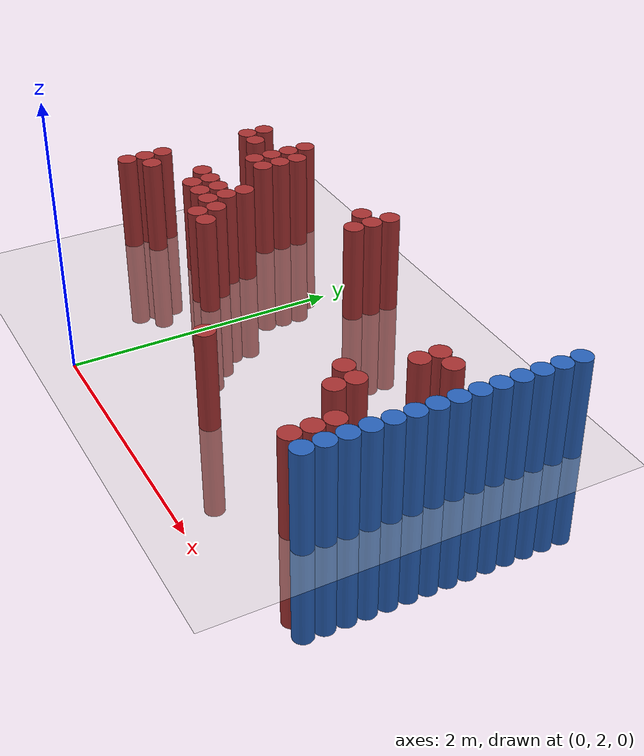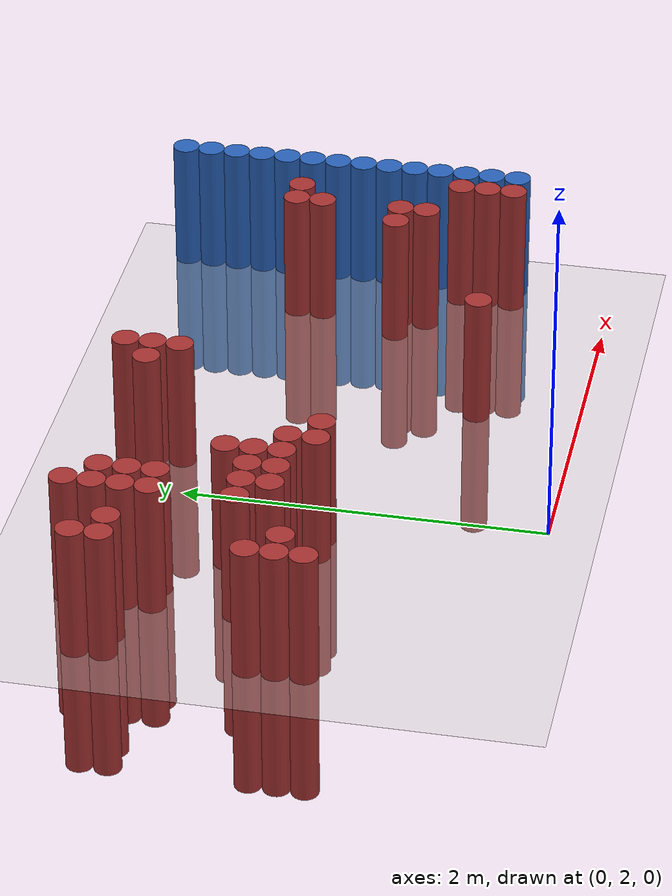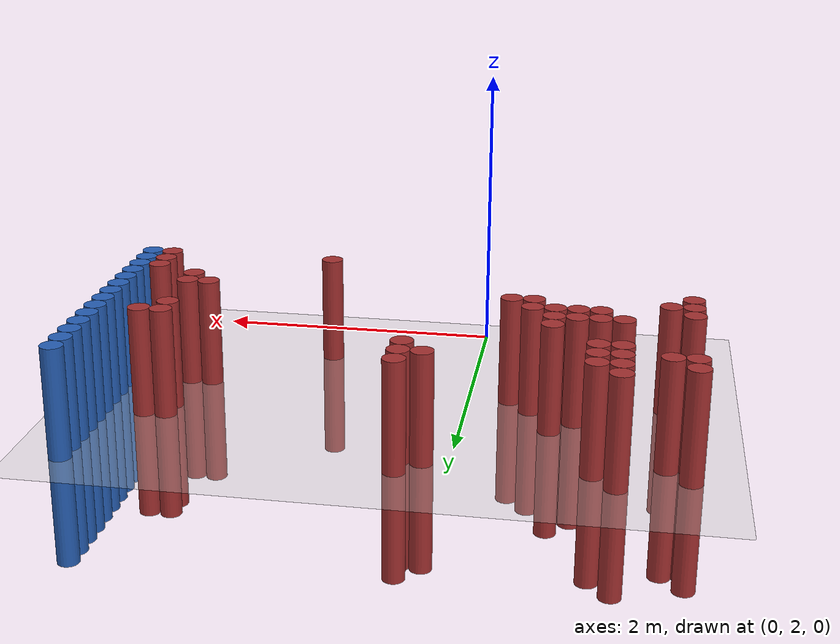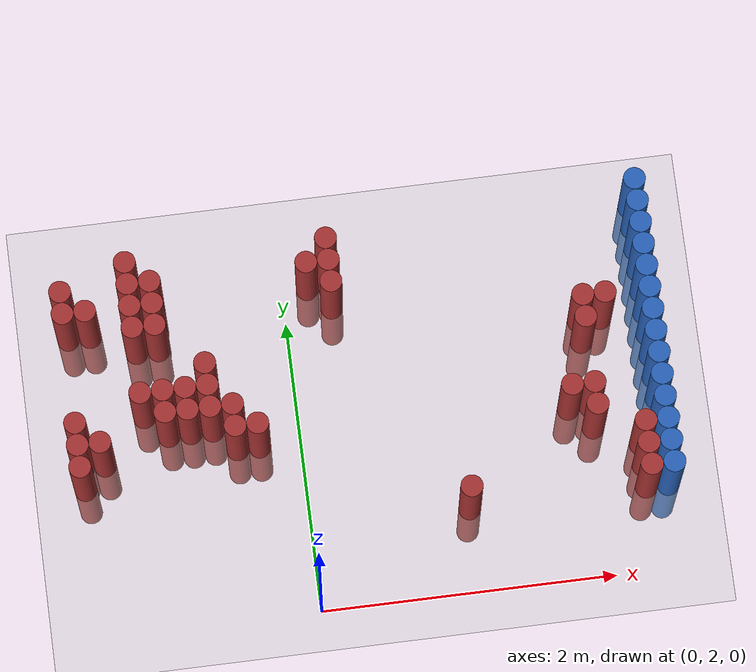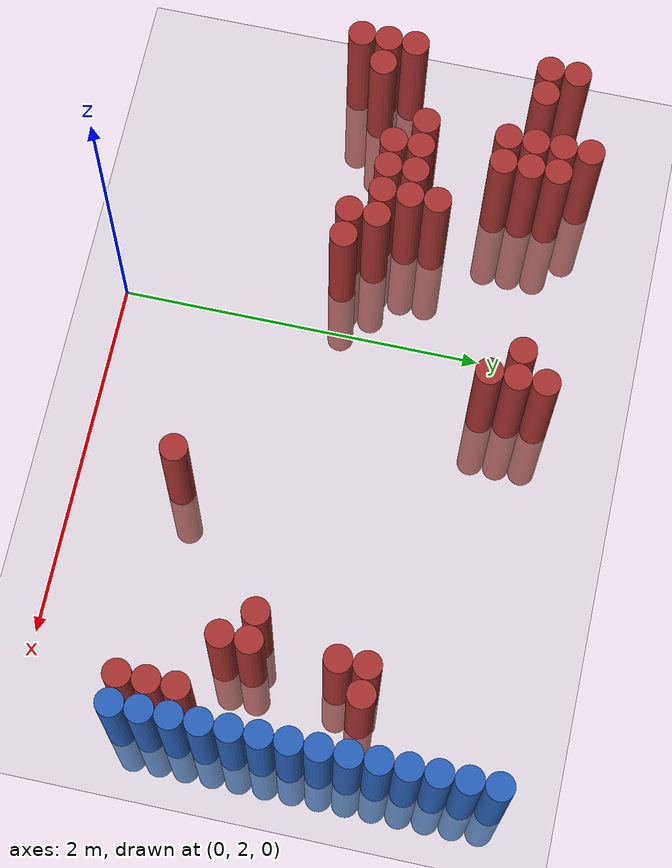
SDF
<sdf version="1.6">
 <world name="default">
  <model name="ground_plane">
   <static>1</static>
   <link name="link">
    <collision name="collision">
     <geometry><plane><normal>0 0 1</normal><size>100 100</size></plane></geometry>
     <surface><friction><ode><mu>100</mu><mu2>50</mu2></ode></friction></surface>
    </collision>
    <visual name="visual">
     <cast_shadows>0</cast_shadows>
     <geometry><plane><normal>0 0 1</normal><size>100 100</size></plane></geometry>
     <material>
      <script><uri>file://media/materials/scripts/gazebo.material</uri><name>Gazebo/Grey</name></script>
     </material>
    </visual>
   </link>
  </model>
  <model name="unit_cylinder_155">
   <static>1</static>
   <pose>-1.475000 3.025000 0.000000 0.000000 0.000000 0.000000</pose>
   <link name="link">
    <inertial>
     <mass>1</mass>
     <inertia><ixx>0.145833</ixx><ixy>0</ixy><ixz>0</ixz><iyy>0.145833</iyy><iyz>0</iyz><izz>0.125</izz></inertia>
    </inertial>
    <collision name="collision">
     <geometry><cylinder><radius>0.075000</radius><length>1.5</length></cylinder></geometry>
    </collision>
    <visual name="visual">
     <geometry><cylinder><radius>0.075000</radius><length>1.5</length></cylinder></geometry>
     <material>
      <ambient>0.648000 0.192000 0.192000 1</ambient>
      <diffuse>0.648000 0.192000 0.192000 1</diffuse>
     </material>
     <material>
      <script><name>Gazebo/Grey</name><uri>file://media/materials/scripts/gazebo.material</uri></script>
     </material>
    </visual>
   </link>
  </model>
  <model name="unit_cylinder_156">
   <static>1</static>
   <pose>-1.475000 3.175000 0.000000 0.000000 0.000000 0.000000</pose>
   <link name="link">
    <inertial>
     <mass>1</mass>
     <inertia><ixx>0.145833</ixx><ixy>0</ixy><ixz>0</ixz><iyy>0.145833</iyy><iyz>0</iyz><izz>0.125</izz></inertia>
    </inertial>
    <collision name="collision">
     <geometry><cylinder><radius>0.075000</radius><length>1.5</length></cylinder></geometry>
    </collision>
    <visual name="visual">
     <geometry><cylinder><radius>0.075000</radius><length>1.5</length></cylinder></geometry>
     <material>
      <ambient>0.648000 0.192000 0.192000 1</ambient>
      <diffuse>0.648000 0.192000 0.192000 1</diffuse>
     </material>
     <material>
      <script><name>Gazebo/Grey</name><uri>file://media/materials/scripts/gazebo.material</uri></script>
     </material>
    </visual>
   </link>
  </model>
  <model name="unit_cylinder_157">
   <static>1</static>
   <pose>-1.475000 3.325000 0.000000 0.000000 0.000000 0.000000</pose>
   <link name="link">
    <inertial>
     <mass>1</mass>
     <inertia><ixx>0.145833</ixx><ixy>0</ixy><ixz>0</ixz><iyy>0.145833</iyy><iyz>0</iyz><izz>0.125</izz></inertia>
    </inertial>
    <collision name="collision">
     <geometry><cylinder><radius>0.075000</radius><length>1.5</length></cylinder></geometry>
    </collision>
    <visual name="visual">
     <geometry><cylinder><radius>0.075000</radius><length>1.5</length></cylinder></geometry>
     <material>
      <ambient>0.648000 0.192000 0.192000 1</ambient>
      <diffuse>0.648000 0.192000 0.192000 1</diffuse>
     </material>
     <material>
      <script><name>Gazebo/Grey</name><uri>file://media/materials/scripts/gazebo.material</uri></script>
     </material>
    </visual>
   </link>
  </model>
  <model name="unit_cylinder_158">
   <static>1</static>
   <pose>-1.475000 4.075000 0.000000 0.000000 0.000000 0.000000</pose>
   <link name="link">
    <inertial>
     <mass>1</mass>
     <inertia><ixx>0.145833</ixx><ixy>0</ixy><ixz>0</ixz><iyy>0.145833</iyy><iyz>0</iyz><izz>0.125</izz></inertia>
    </inertial>
    <collision name="collision">
     <geometry><cylinder><radius>0.075000</radius><length>1.5</length></cylinder></geometry>
    </collision>
    <visual name="visual">
     <geometry><cylinder><radius>0.075000</radius><length>1.5</length></cylinder></geometry>
     <material>
      <ambient>0.648000 0.192000 0.192000 1</ambient>
      <diffuse>0.648000 0.192000 0.192000 1</diffuse>
     </material>
     <material>
      <script><name>Gazebo/Grey</name><uri>file://media/materials/scripts/gazebo.material</uri></script>
     </material>
    </visual>
   </link>
  </model>
  <model name="unit_cylinder_159">
   <static>1</static>
   <pose>-1.475000 4.225000 0.000000 0.000000 0.000000 0.000000</pose>
   <link name="link">
    <inertial>
     <mass>1</mass>
     <inertia><ixx>0.145833</ixx><ixy>0</ixy><ixz>0</ixz><iyy>0.145833</iyy><iyz>0</iyz><izz>0.125</izz></inertia>
    </inertial>
    <collision name="collision">
     <geometry><cylinder><radius>0.075000</radius><length>1.5</length></cylinder></geometry>
    </collision>
    <visual name="visual">
     <geometry><cylinder><radius>0.075000</radius><length>1.5</length></cylinder></geometry>
     <material>
      <ambient>0.648000 0.192000 0.192000 1</ambient>
      <diffuse>0.648000 0.192000 0.192000 1</diffuse>
     </material>
     <material>
      <script><name>Gazebo/Grey</name><uri>file://media/materials/scripts/gazebo.material</uri></script>
     </material>
    </visual>
   </link>
  </model>
  <model name="unit_cylinder_168">
   <static>1</static>
   <pose>-1.325000 3.175000 0.000000 0.000000 0.000000 0.000000</pose>
   <link name="link">
    <inertial>
     <mass>1</mass>
     <inertia><ixx>0.145833</ixx><ixy>0</ixy><ixz>0</ixz><iyy>0.145833</iyy><iyz>0</iyz><izz>0.125</izz></inertia>
    </inertial>
    <collision name="collision">
     <geometry><cylinder><radius>0.075000</radius><length>1.5</length></cylinder></geometry>
    </collision>
    <visual name="visual">
     <geometry><cylinder><radius>0.075000</radius><length>1.5</length></cylinder></geometry>
     <material>
      <ambient>0.648000 0.192000 0.192000 1</ambient>
      <diffuse>0.648000 0.192000 0.192000 1</diffuse>
     </material>
     <material>
      <script><name>Gazebo/Grey</name><uri>file://media/materials/scripts/gazebo.material</uri></script>
     </material>
    </visual>
   </link>
  </model>
  <model name="unit_cylinder_169">
   <static>1</static>
   <pose>-1.325000 4.075000 0.000000 0.000000 0.000000 0.000000</pose>
   <link name="link">
    <inertial>
     <mass>1</mass>
     <inertia><ixx>0.145833</ixx><ixy>0</ixy><ixz>0</ixz><iyy>0.145833</iyy><iyz>0</iyz><izz>0.125</izz></inertia>
    </inertial>
    <collision name="collision">
     <geometry><cylinder><radius>0.075000</radius><length>1.5</length></cylinder></geometry>
    </collision>
    <visual name="visual">
     <geometry><cylinder><radius>0.075000</radius><length>1.5</length></cylinder></geometry>
     <material>
      <ambient>0.648000 0.192000 0.192000 1</ambient>
      <diffuse>0.648000 0.192000 0.192000 1</diffuse>
     </material>
     <material>
      <script><name>Gazebo/Grey</name><uri>file://media/materials/scripts/gazebo.material</uri></script>
     </material>
    </visual>
   </link>
  </model>
  <model name="unit_cylinder_177">
   <static>1</static>
   <pose>-1.025000 3.475000 0.000000 0.000000 0.000000 0.000000</pose>
   <link name="link">
    <inertial>
     <mass>1</mass>
     <inertia><ixx>0.145833</ixx><ixy>0</ixy><ixz>0</ixz><iyy>0.145833</iyy><iyz>0</iyz><izz>0.125</izz></inertia>
    </inertial>
    <collision name="collision">
     <geometry><cylinder><radius>0.075000</radius><length>1.5</length></cylinder></geometry>
    </collision>
    <visual name="visual">
     <geometry><cylinder><radius>0.075000</radius><length>1.5</length></cylinder></geometry>
     <material>
      <ambient>0.648000 0.192000 0.192000 1</ambient>
      <diffuse>0.648000 0.192000 0.192000 1</diffuse>
     </material>
     <material>
      <script><name>Gazebo/Grey</name><uri>file://media/materials/scripts/gazebo.material</uri></script>
     </material>
    </visual>
   </link>
  </model>
  <model name="unit_cylinder_178">
   <static>1</static>
   <pose>-1.025000 3.925000 0.000000 0.000000 0.000000 0.000000</pose>
   <link name="link">
    <inertial>
     <mass>1</mass>
     <inertia><ixx>0.145833</ixx><ixy>0</ixy><ixz>0</ixz><iyy>0.145833</iyy><iyz>0</iyz><izz>0.125</izz></inertia>
    </inertial>
    <collision name="collision">
     <geometry><cylinder><radius>0.075000</radius><length>1.5</length></cylinder></geometry>
    </collision>
    <visual name="visual">
     <geometry><cylinder><radius>0.075000</radius><length>1.5</length></cylinder></geometry>
     <material>
      <ambient>0.648000 0.192000 0.192000 1</ambient>
      <diffuse>0.648000 0.192000 0.192000 1</diffuse>
     </material>
     <material>
      <script><name>Gazebo/Grey</name><uri>file://media/materials/scripts/gazebo.material</uri></script>
     </material>
    </visual>
   </link>
  </model>
  <model name="unit_cylinder_179">
   <static>1</static>
   <pose>-1.025000 4.075000 0.000000 0.000000 0.000000 0.000000</pose>
   <link name="link">
    <inertial>
     <mass>1</mass>
     <inertia><ixx>0.145833</ixx><ixy>0</ixy><ixz>0</ixz><iyy>0.145833</iyy><iyz>0</iyz><izz>0.125</izz></inertia>
    </inertial>
    <collision name="collision">
     <geometry><cylinder><radius>0.075000</radius><length>1.5</length></cylinder></geometry>
    </collision>
    <visual name="visual">
     <geometry><cylinder><radius>0.075000</radius><length>1.5</length></cylinder></geometry>
     <material>
      <ambient>0.648000 0.192000 0.192000 1</ambient>
      <diffuse>0.648000 0.192000 0.192000 1</diffuse>
     </material>
     <material>
      <script><name>Gazebo/Grey</name><uri>file://media/materials/scripts/gazebo.material</uri></script>
     </material>
    </visual>
   </link>
  </model>
  <model name="unit_cylinder_180">
   <static>1</static>
   <pose>-1.025000 4.225000 0.000000 0.000000 0.000000 0.000000</pose>
   <link name="link">
    <inertial>
     <mass>1</mass>
     <inertia><ixx>0.145833</ixx><ixy>0</ixy><ixz>0</ixz><iyy>0.145833</iyy><iyz>0</iyz><izz>0.125</izz></inertia>
    </inertial>
    <collision name="collision">
     <geometry><cylinder><radius>0.075000</radius><length>1.5</length></cylinder></geometry>
    </collision>
    <visual name="visual">
     <geometry><cylinder><radius>0.075000</radius><length>1.5</length></cylinder></geometry>
     <material>
      <ambient>0.648000 0.192000 0.192000 1</ambient>
      <diffuse>0.648000 0.192000 0.192000 1</diffuse>
     </material>
     <material>
      <script><name>Gazebo/Grey</name><uri>file://media/materials/scripts/gazebo.material</uri></script>
     </material>
    </visual>
   </link>
  </model>
  <model name="unit_cylinder_181">
   <static>1</static>
   <pose>-1.025000 4.375000 0.000000 0.000000 0.000000 0.000000</pose>
   <link name="link">
    <inertial>
     <mass>1</mass>
     <inertia><ixx>0.145833</ixx><ixy>0</ixy><ixz>0</ixz><iyy>0.145833</iyy><iyz>0</iyz><izz>0.125</izz></inertia>
    </inertial>
    <collision name="collision">
     <geometry><cylinder><radius>0.075000</radius><length>1.5</length></cylinder></geometry>
    </collision>
    <visual name="visual">
     <geometry><cylinder><radius>0.075000</radius><length>1.5</length></cylinder></geometry>
     <material>
      <ambient>0.648000 0.192000 0.192000 1</ambient>
      <diffuse>0.648000 0.192000 0.192000 1</diffuse>
     </material>
     <material>
      <script><name>Gazebo/Grey</name><uri>file://media/materials/scripts/gazebo.material</uri></script>
     </material>
    </visual>
   </link>
  </model>
  <model name="unit_cylinder_185">
   <static>1</static>
   <pose>-0.875000 3.325000 0.000000 0.000000 0.000000 0.000000</pose>
   <link name="link">
    <inertial>
     <mass>1</mass>
     <inertia><ixx>0.145833</ixx><ixy>0</ixy><ixz>0</ixz><iyy>0.145833</iyy><iyz>0</iyz><izz>0.125</izz></inertia>
    </inertial>
    <collision name="collision">
     <geometry><cylinder><radius>0.075000</radius><length>1.5</length></cylinder></geometry>
    </collision>
    <visual name="visual">
     <geometry><cylinder><radius>0.075000</radius><length>1.5</length></cylinder></geometry>
     <material>
      <ambient>0.648000 0.192000 0.192000 1</ambient>
      <diffuse>0.648000 0.192000 0.192000 1</diffuse>
     </material>
     <material>
      <script><name>Gazebo/Grey</name><uri>file://media/materials/scripts/gazebo.material</uri></script>
     </material>
    </visual>
   </link>
  </model>
  <model name="unit_cylinder_186">
   <static>1</static>
   <pose>-0.875000 3.475000 0.000000 0.000000 0.000000 0.000000</pose>
   <link name="link">
    <inertial>
     <mass>1</mass>
     <inertia><ixx>0.145833</ixx><ixy>0</ixy><ixz>0</ixz><iyy>0.145833</iyy><iyz>0</iyz><izz>0.125</izz></inertia>
    </inertial>
    <collision name="collision">
     <geometry><cylinder><radius>0.075000</radius><length>1.5</length></cylinder></geometry>
    </collision>
    <visual name="visual">
     <geometry><cylinder><radius>0.075000</radius><length>1.5</length></cylinder></geometry>
     <material>
      <ambient>0.648000 0.192000 0.192000 1</ambient>
      <diffuse>0.648000 0.192000 0.192000 1</diffuse>
     </material>
     <material>
      <script><name>Gazebo/Grey</name><uri>file://media/materials/scripts/gazebo.material</uri></script>
     </material>
    </visual>
   </link>
  </model>
  <model name="unit_cylinder_187">
   <static>1</static>
   <pose>-0.875000 3.925000 0.000000 0.000000 0.000000 0.000000</pose>
   <link name="link">
    <inertial>
     <mass>1</mass>
     <inertia><ixx>0.145833</ixx><ixy>0</ixy><ixz>0</ixz><iyy>0.145833</iyy><iyz>0</iyz><izz>0.125</izz></inertia>
    </inertial>
    <collision name="collision">
     <geometry><cylinder><radius>0.075000</radius><length>1.5</length></cylinder></geometry>
    </collision>
    <visual name="visual">
     <geometry><cylinder><radius>0.075000</radius><length>1.5</length></cylinder></geometry>
     <material>
      <ambient>0.648000 0.192000 0.192000 1</ambient>
      <diffuse>0.648000 0.192000 0.192000 1</diffuse>
     </material>
     <material>
      <script><name>Gazebo/Grey</name><uri>file://media/materials/scripts/gazebo.material</uri></script>
     </material>
    </visual>
   </link>
  </model>
  <model name="unit_cylinder_188">
   <static>1</static>
   <pose>-0.875000 4.075000 0.000000 0.000000 0.000000 0.000000</pose>
   <link name="link">
    <inertial>
     <mass>1</mass>
     <inertia><ixx>0.145833</ixx><ixy>0</ixy><ixz>0</ixz><iyy>0.145833</iyy><iyz>0</iyz><izz>0.125</izz></inertia>
    </inertial>
    <collision name="collision">
     <geometry><cylinder><radius>0.075000</radius><length>1.5</length></cylinder></geometry>
    </collision>
    <visual name="visual">
     <geometry><cylinder><radius>0.075000</radius><length>1.5</length></cylinder></geometry>
     <material>
      <ambient>0.648000 0.192000 0.192000 1</ambient>
      <diffuse>0.648000 0.192000 0.192000 1</diffuse>
     </material>
     <material>
      <script><name>Gazebo/Grey</name><uri>file://media/materials/scripts/gazebo.material</uri></script>
     </material>
    </visual>
   </link>
  </model>
  <model name="unit_cylinder_189">
   <static>1</static>
   <pose>-0.875000 4.225000 0.000000 0.000000 0.000000 0.000000</pose>
   <link name="link">
    <inertial>
     <mass>1</mass>
     <inertia><ixx>0.145833</ixx><ixy>0</ixy><ixz>0</ixz><iyy>0.145833</iyy><iyz>0</iyz><izz>0.125</izz></inertia>
    </inertial>
    <collision name="collision">
     <geometry><cylinder><radius>0.075000</radius><length>1.5</length></cylinder></geometry>
    </collision>
    <visual name="visual">
     <geometry><cylinder><radius>0.075000</radius><length>1.5</length></cylinder></geometry>
     <material>
      <ambient>0.648000 0.192000 0.192000 1</ambient>
      <diffuse>0.648000 0.192000 0.192000 1</diffuse>
     </material>
     <material>
      <script><name>Gazebo/Grey</name><uri>file://media/materials/scripts/gazebo.material</uri></script>
     </material>
    </visual>
   </link>
  </model>
  <model name="unit_cylinder_194">
   <static>1</static>
   <pose>-0.725000 3.325000 0.000000 0.000000 0.000000 0.000000</pose>
   <link name="link">
    <inertial>
     <mass>1</mass>
     <inertia><ixx>0.145833</ixx><ixy>0</ixy><ixz>0</ixz><iyy>0.145833</iyy><iyz>0</iyz><izz>0.125</izz></inertia>
    </inertial>
    <collision name="collision">
     <geometry><cylinder><radius>0.075000</radius><length>1.5</length></cylinder></geometry>
    </collision>
    <visual name="visual">
     <geometry><cylinder><radius>0.075000</radius><length>1.5</length></cylinder></geometry>
     <material>
      <ambient>0.648000 0.192000 0.192000 1</ambient>
      <diffuse>0.648000 0.192000 0.192000 1</diffuse>
     </material>
     <material>
      <script><name>Gazebo/Grey</name><uri>file://media/materials/scripts/gazebo.material</uri></script>
     </material>
    </visual>
   </link>
  </model>
  <model name="unit_cylinder_195">
   <static>1</static>
   <pose>-0.725000 3.475000 0.000000 0.000000 0.000000 0.000000</pose>
   <link name="link">
    <inertial>
     <mass>1</mass>
     <inertia><ixx>0.145833</ixx><ixy>0</ixy><ixz>0</ixz><iyy>0.145833</iyy><iyz>0</iyz><izz>0.125</izz></inertia>
    </inertial>
    <collision name="collision">
     <geometry><cylinder><radius>0.075000</radius><length>1.5</length></cylinder></geometry>
    </collision>
    <visual name="visual">
     <geometry><cylinder><radius>0.075000</radius><length>1.5</length></cylinder></geometry>
     <material>
      <ambient>0.648000 0.192000 0.192000 1</ambient>
      <diffuse>0.648000 0.192000 0.192000 1</diffuse>
     </material>
     <material>
      <script><name>Gazebo/Grey</name><uri>file://media/materials/scripts/gazebo.material</uri></script>
     </material>
    </visual>
   </link>
  </model>
  <model name="unit_cylinder_198">
   <static>1</static>
   <pose>-0.575000 3.325000 0.000000 0.000000 0.000000 0.000000</pose>
   <link name="link">
    <inertial>
     <mass>1</mass>
     <inertia><ixx>0.145833</ixx><ixy>0</ixy><ixz>0</ixz><iyy>0.145833</iyy><iyz>0</iyz><izz>0.125</izz></inertia>
    </inertial>
    <collision name="collision">
     <geometry><cylinder><radius>0.075000</radius><length>1.5</length></cylinder></geometry>
    </collision>
    <visual name="visual">
     <geometry><cylinder><radius>0.075000</radius><length>1.5</length></cylinder></geometry>
     <material>
      <ambient>0.648000 0.192000 0.192000 1</ambient>
      <diffuse>0.648000 0.192000 0.192000 1</diffuse>
     </material>
     <material>
      <script><name>Gazebo/Grey</name><uri>file://media/materials/scripts/gazebo.material</uri></script>
     </material>
    </visual>
   </link>
  </model>
  <model name="unit_cylinder_199">
   <static>1</static>
   <pose>-0.575000 3.475000 0.000000 0.000000 0.000000 0.000000</pose>
   <link name="link">
    <inertial>
     <mass>1</mass>
     <inertia><ixx>0.145833</ixx><ixy>0</ixy><ixz>0</ixz><iyy>0.145833</iyy><iyz>0</iyz><izz>0.125</izz></inertia>
    </inertial>
    <collision name="collision">
     <geometry><cylinder><radius>0.075000</radius><length>1.5</length></cylinder></geometry>
    </collision>
    <visual name="visual">
     <geometry><cylinder><radius>0.075000</radius><length>1.5</length></cylinder></geometry>
     <material>
      <ambient>0.648000 0.192000 0.192000 1</ambient>
      <diffuse>0.648000 0.192000 0.192000 1</diffuse>
     </material>
     <material>
      <script><name>Gazebo/Grey</name><uri>file://media/materials/scripts/gazebo.material</uri></script>
     </material>
    </visual>
   </link>
  </model>
  <model name="unit_cylinder_200">
   <static>1</static>
   <pose>-0.575000 3.625000 0.000000 0.000000 0.000000 0.000000</pose>
   <link name="link">
    <inertial>
     <mass>1</mass>
     <inertia><ixx>0.145833</ixx><ixy>0</ixy><ixz>0</ixz><iyy>0.145833</iyy><iyz>0</iyz><izz>0.125</izz></inertia>
    </inertial>
    <collision name="collision">
     <geometry><cylinder><radius>0.075000</radius><length>1.5</length></cylinder></geometry>
    </collision>
    <visual name="visual">
     <geometry><cylinder><radius>0.075000</radius><length>1.5</length></cylinder></geometry>
     <material>
      <ambient>0.648000 0.192000 0.192000 1</ambient>
      <diffuse>0.648000 0.192000 0.192000 1</diffuse>
     </material>
     <material>
      <script><name>Gazebo/Grey</name><uri>file://media/materials/scripts/gazebo.material</uri></script>
     </material>
    </visual>
   </link>
  </model>
  <model name="unit_cylinder_201">
   <static>1</static>
   <pose>-0.425000 3.175000 0.000000 0.000000 0.000000 0.000000</pose>
   <link name="link">
    <inertial>
     <mass>1</mass>
     <inertia><ixx>0.145833</ixx><ixy>0</ixy><ixz>0</ixz><iyy>0.145833</iyy><iyz>0</iyz><izz>0.125</izz></inertia>
    </inertial>
    <collision name="collision">
     <geometry><cylinder><radius>0.075000</radius><length>1.5</length></cylinder></geometry>
    </collision>
    <visual name="visual">
     <geometry><cylinder><radius>0.075000</radius><length>1.5</length></cylinder></geometry>
     <material>
      <ambient>0.648000 0.192000 0.192000 1</ambient>
      <diffuse>0.648000 0.192000 0.192000 1</diffuse>
     </material>
     <material>
      <script><name>Gazebo/Grey</name><uri>file://media/materials/scripts/gazebo.material</uri></script>
     </material>
    </visual>
   </link>
  </model>
  <model name="unit_cylinder_202">
   <static>1</static>
   <pose>-0.425000 3.325000 0.000000 0.000000 0.000000 0.000000</pose>
   <link name="link">
    <inertial>
     <mass>1</mass>
     <inertia><ixx>0.145833</ixx><ixy>0</ixy><ixz>0</ixz><iyy>0.145833</iyy><iyz>0</iyz><izz>0.125</izz></inertia>
    </inertial>
    <collision name="collision">
     <geometry><cylinder><radius>0.075000</radius><length>1.5</length></cylinder></geometry>
    </collision>
    <visual name="visual">
     <geometry><cylinder><radius>0.075000</radius><length>1.5</length></cylinder></geometry>
     <material>
      <ambient>0.648000 0.192000 0.192000 1</ambient>
      <diffuse>0.648000 0.192000 0.192000 1</diffuse>
     </material>
     <material>
      <script><name>Gazebo/Grey</name><uri>file://media/materials/scripts/gazebo.material</uri></script>
     </material>
    </visual>
   </link>
  </model>
  <model name="unit_cylinder_203">
   <static>1</static>
   <pose>-0.275000 3.175000 0.000000 0.000000 0.000000 0.000000</pose>
   <link name="link">
    <inertial>
     <mass>1</mass>
     <inertia><ixx>0.145833</ixx><ixy>0</ixy><ixz>0</ixz><iyy>0.145833</iyy><iyz>0</iyz><izz>0.125</izz></inertia>
    </inertial>
    <collision name="collision">
     <geometry><cylinder><radius>0.075000</radius><length>1.5</length></cylinder></geometry>
    </collision>
    <visual name="visual">
     <geometry><cylinder><radius>0.075000</radius><length>1.5</length></cylinder></geometry>
     <material>
      <ambient>0.648000 0.192000 0.192000 1</ambient>
      <diffuse>0.648000 0.192000 0.192000 1</diffuse>
     </material>
     <material>
      <script><name>Gazebo/Grey</name><uri>file://media/materials/scripts/gazebo.material</uri></script>
     </material>
    </visual>
   </link>
  </model>
  <model name="unit_cylinder_206">
   <static>1</static>
   <pose>0.175000 4.225000 0.000000 0.000000 0.000000 0.000000</pose>
   <link name="link">
    <inertial>
     <mass>1</mass>
     <inertia><ixx>0.145833</ixx><ixy>0</ixy><ixz>0</ixz><iyy>0.145833</iyy><iyz>0</iyz><izz>0.125</izz></inertia>
    </inertial>
    <collision name="collision">
     <geometry><cylinder><radius>0.075000</radius><length>1.5</length></cylinder></geometry>
    </collision>
    <visual name="visual">
     <geometry><cylinder><radius>0.075000</radius><length>1.5</length></cylinder></geometry>
     <material>
      <ambient>0.648000 0.192000 0.192000 1</ambient>
      <diffuse>0.648000 0.192000 0.192000 1</diffuse>
     </material>
     <material>
      <script><name>Gazebo/Grey</name><uri>file://media/materials/scripts/gazebo.material</uri></script>
     </material>
    </visual>
   </link>
  </model>
  <model name="unit_cylinder_208">
   <static>1</static>
   <pose>0.325000 4.075000 0.000000 0.000000 0.000000 0.000000</pose>
   <link name="link">
    <inertial>
     <mass>1</mass>
     <inertia><ixx>0.145833</ixx><ixy>0</ixy><ixz>0</ixz><iyy>0.145833</iyy><iyz>0</iyz><izz>0.125</izz></inertia>
    </inertial>
    <collision name="collision">
     <geometry><cylinder><radius>0.075000</radius><length>1.5</length></cylinder></geometry>
    </collision>
    <visual name="visual">
     <geometry><cylinder><radius>0.075000</radius><length>1.5</length></cylinder></geometry>
     <material>
      <ambient>0.648000 0.192000 0.192000 1</ambient>
      <diffuse>0.648000 0.192000 0.192000 1</diffuse>
     </material>
     <material>
      <script><name>Gazebo/Grey</name><uri>file://media/materials/scripts/gazebo.material</uri></script>
     </material>
    </visual>
   </link>
  </model>
  <model name="unit_cylinder_209">
   <static>1</static>
   <pose>0.325000 4.225000 0.000000 0.000000 0.000000 0.000000</pose>
   <link name="link">
    <inertial>
     <mass>1</mass>
     <inertia><ixx>0.145833</ixx><ixy>0</ixy><ixz>0</ixz><iyy>0.145833</iyy><iyz>0</iyz><izz>0.125</izz></inertia>
    </inertial>
    <collision name="collision">
     <geometry><cylinder><radius>0.075000</radius><length>1.5</length></cylinder></geometry>
    </collision>
    <visual name="visual">
     <geometry><cylinder><radius>0.075000</radius><length>1.5</length></cylinder></geometry>
     <material>
      <ambient>0.648000 0.192000 0.192000 1</ambient>
      <diffuse>0.648000 0.192000 0.192000 1</diffuse>
     </material>
     <material>
      <script><name>Gazebo/Grey</name><uri>file://media/materials/scripts/gazebo.material</uri></script>
     </material>
    </visual>
   </link>
  </model>
  <model name="unit_cylinder_210">
   <static>1</static>
   <pose>0.325000 4.375000 0.000000 0.000000 0.000000 0.000000</pose>
   <link name="link">
    <inertial>
     <mass>1</mass>
     <inertia><ixx>0.145833</ixx><ixy>0</ixy><ixz>0</ixz><iyy>0.145833</iyy><iyz>0</iyz><izz>0.125</izz></inertia>
    </inertial>
    <collision name="collision">
     <geometry><cylinder><radius>0.075000</radius><length>1.5</length></cylinder></geometry>
    </collision>
    <visual name="visual">
     <geometry><cylinder><radius>0.075000</radius><length>1.5</length></cylinder></geometry>
     <material>
      <ambient>0.648000 0.192000 0.192000 1</ambient>
      <diffuse>0.648000 0.192000 0.192000 1</diffuse>
     </material>
     <material>
      <script><name>Gazebo/Grey</name><uri>file://media/materials/scripts/gazebo.material</uri></script>
     </material>
    </visual>
   </link>
  </model>
  <model name="unit_cylinder_215">
   <static>1</static>
   <pose>1.075000 2.575000 0.000000 0.000000 0.000000 0.000000</pose>
   <link name="link">
    <inertial>
     <mass>1</mass>
     <inertia><ixx>0.145833</ixx><ixy>0</ixy><ixz>0</ixz><iyy>0.145833</iyy><iyz>0</iyz><izz>0.125</izz></inertia>
    </inertial>
    <collision name="collision">
     <geometry><cylinder><radius>0.075000</radius><length>1.5</length></cylinder></geometry>
    </collision>
    <visual name="visual">
     <geometry><cylinder><radius>0.075000</radius><length>1.5</length></cylinder></geometry>
     <material>
      <ambient>0.648000 0.192000 0.192000 1</ambient>
      <diffuse>0.648000 0.192000 0.192000 1</diffuse>
     </material>
     <material>
      <script><name>Gazebo/Grey</name><uri>file://media/materials/scripts/gazebo.material</uri></script>
     </material>
    </visual>
   </link>
  </model>
  <model name="unit_cylinder_221">
   <static>1</static>
   <pose>1.825000 3.175000 0.000000 0.000000 0.000000 0.000000</pose>
   <link name="link">
    <inertial>
     <mass>1</mass>
     <inertia><ixx>0.145833</ixx><ixy>0</ixy><ixz>0</ixz><iyy>0.145833</iyy><iyz>0</iyz><izz>0.125</izz></inertia>
    </inertial>
    <collision name="collision">
     <geometry><cylinder><radius>0.075000</radius><length>1.5</length></cylinder></geometry>
    </collision>
    <visual name="visual">
     <geometry><cylinder><radius>0.075000</radius><length>1.5</length></cylinder></geometry>
     <material>
      <ambient>0.648000 0.192000 0.192000 1</ambient>
      <diffuse>0.648000 0.192000 0.192000 1</diffuse>
     </material>
     <material>
      <script><name>Gazebo/Grey</name><uri>file://media/materials/scripts/gazebo.material</uri></script>
     </material>
    </visual>
   </link>
  </model>
  <model name="unit_cylinder_223">
   <static>1</static>
   <pose>1.975000 3.025000 0.000000 0.000000 0.000000 0.000000</pose>
   <link name="link">
    <inertial>
     <mass>1</mass>
     <inertia><ixx>0.145833</ixx><ixy>0</ixy><ixz>0</ixz><iyy>0.145833</iyy><iyz>0</iyz><izz>0.125</izz></inertia>
    </inertial>
    <collision name="collision">
     <geometry><cylinder><radius>0.075000</radius><length>1.5</length></cylinder></geometry>
    </collision>
    <visual name="visual">
     <geometry><cylinder><radius>0.075000</radius><length>1.5</length></cylinder></geometry>
     <material>
      <ambient>0.648000 0.192000 0.192000 1</ambient>
      <diffuse>0.648000 0.192000 0.192000 1</diffuse>
     </material>
     <material>
      <script><name>Gazebo/Grey</name><uri>file://media/materials/scripts/gazebo.material</uri></script>
     </material>
    </visual>
   </link>
  </model>
  <model name="unit_cylinder_224">
   <static>1</static>
   <pose>1.975000 3.175000 0.000000 0.000000 0.000000 0.000000</pose>
   <link name="link">
    <inertial>
     <mass>1</mass>
     <inertia><ixx>0.145833</ixx><ixy>0</ixy><ixz>0</ixz><iyy>0.145833</iyy><iyz>0</iyz><izz>0.125</izz></inertia>
    </inertial>
    <collision name="collision">
     <geometry><cylinder><radius>0.075000</radius><length>1.5</length></cylinder></geometry>
    </collision>
    <visual name="visual">
     <geometry><cylinder><radius>0.075000</radius><length>1.5</length></cylinder></geometry>
     <material>
      <ambient>0.648000 0.192000 0.192000 1</ambient>
      <diffuse>0.648000 0.192000 0.192000 1</diffuse>
     </material>
     <material>
      <script><name>Gazebo/Grey</name><uri>file://media/materials/scripts/gazebo.material</uri></script>
     </material>
    </visual>
   </link>
  </model>
  <model name="unit_cylinder_225">
   <static>1</static>
   <pose>1.975000 3.625000 0.000000 0.000000 0.000000 0.000000</pose>
   <link name="link">
    <inertial>
     <mass>1</mass>
     <inertia><ixx>0.145833</ixx><ixy>0</ixy><ixz>0</ixz><iyy>0.145833</iyy><iyz>0</iyz><izz>0.125</izz></inertia>
    </inertial>
    <collision name="collision">
     <geometry><cylinder><radius>0.075000</radius><length>1.5</length></cylinder></geometry>
    </collision>
    <visual name="visual">
     <geometry><cylinder><radius>0.075000</radius><length>1.5</length></cylinder></geometry>
     <material>
      <ambient>0.648000 0.192000 0.192000 1</ambient>
      <diffuse>0.648000 0.192000 0.192000 1</diffuse>
     </material>
     <material>
      <script><name>Gazebo/Grey</name><uri>file://media/materials/scripts/gazebo.material</uri></script>
     </material>
    </visual>
   </link>
  </model>
  <model name="unit_cylinder_226">
   <static>1</static>
   <pose>1.975000 3.775000 0.000000 0.000000 0.000000 0.000000</pose>
   <link name="link">
    <inertial>
     <mass>1</mass>
     <inertia><ixx>0.145833</ixx><ixy>0</ixy><ixz>0</ixz><iyy>0.145833</iyy><iyz>0</iyz><izz>0.125</izz></inertia>
    </inertial>
    <collision name="collision">
     <geometry><cylinder><radius>0.075000</radius><length>1.5</length></cylinder></geometry>
    </collision>
    <visual name="visual">
     <geometry><cylinder><radius>0.075000</radius><length>1.5</length></cylinder></geometry>
     <material>
      <ambient>0.648000 0.192000 0.192000 1</ambient>
      <diffuse>0.648000 0.192000 0.192000 1</diffuse>
     </material>
     <material>
      <script><name>Gazebo/Grey</name><uri>file://media/materials/scripts/gazebo.material</uri></script>
     </material>
    </visual>
   </link>
  </model>
  <model name="unit_cylinder_229">
   <static>1</static>
   <pose>2.125000 3.775000 0.000000 0.000000 0.000000 0.000000</pose>
   <link name="link">
    <inertial>
     <mass>1</mass>
     <inertia><ixx>0.145833</ixx><ixy>0</ixy><ixz>0</ixz><iyy>0.145833</iyy><iyz>0</iyz><izz>0.125</izz></inertia>
    </inertial>
    <collision name="collision">
     <geometry><cylinder><radius>0.075000</radius><length>1.5</length></cylinder></geometry>
    </collision>
    <visual name="visual">
     <geometry><cylinder><radius>0.075000</radius><length>1.5</length></cylinder></geometry>
     <material>
      <ambient>0.648000 0.192000 0.192000 1</ambient>
      <diffuse>0.648000 0.192000 0.192000 1</diffuse>
     </material>
     <material>
      <script><name>Gazebo/Grey</name><uri>file://media/materials/scripts/gazebo.material</uri></script>
     </material>
    </visual>
   </link>
  </model>
  <model name="unit_cylinder_236">
   <static>1</static>
   <pose>2.275000 2.575000 0.000000 0.000000 0.000000 0.000000</pose>
   <link name="link">
    <inertial>
     <mass>1</mass>
     <inertia><ixx>0.145833</ixx><ixy>0</ixy><ixz>0</ixz><iyy>0.145833</iyy><iyz>0</iyz><izz>0.125</izz></inertia>
    </inertial>
    <collision name="collision">
     <geometry><cylinder><radius>0.075000</radius><length>1.5</length></cylinder></geometry>
    </collision>
    <visual name="visual">
     <geometry><cylinder><radius>0.075000</radius><length>1.5</length></cylinder></geometry>
     <material>
      <ambient>0.648000 0.192000 0.192000 1</ambient>
      <diffuse>0.648000 0.192000 0.192000 1</diffuse>
     </material>
     <material>
      <script><name>Gazebo/Grey</name><uri>file://media/materials/scripts/gazebo.material</uri></script>
     </material>
    </visual>
   </link>
  </model>
  <model name="unit_cylinder_237">
   <static>1</static>
   <pose>2.275000 2.725000 0.000000 0.000000 0.000000 0.000000</pose>
   <link name="link">
    <inertial>
     <mass>1</mass>
     <inertia><ixx>0.145833</ixx><ixy>0</ixy><ixz>0</ixz><iyy>0.145833</iyy><iyz>0</iyz><izz>0.125</izz></inertia>
    </inertial>
    <collision name="collision">
     <geometry><cylinder><radius>0.075000</radius><length>1.5</length></cylinder></geometry>
    </collision>
    <visual name="visual">
     <geometry><cylinder><radius>0.075000</radius><length>1.5</length></cylinder></geometry>
     <material>
      <ambient>0.648000 0.192000 0.192000 1</ambient>
      <diffuse>0.648000 0.192000 0.192000 1</diffuse>
     </material>
     <material>
      <script><name>Gazebo/Grey</name><uri>file://media/materials/scripts/gazebo.material</uri></script>
     </material>
    </visual>
   </link>
  </model>
  <model name="unit_cylinder_238">
   <static>1</static>
   <pose>2.275000 2.875000 0.000000 0.000000 0.000000 0.000000</pose>
   <link name="link">
    <inertial>
     <mass>1</mass>
     <inertia><ixx>0.145833</ixx><ixy>0</ixy><ixz>0</ixz><iyy>0.145833</iyy><iyz>0</iyz><izz>0.125</izz></inertia>
    </inertial>
    <collision name="collision">
     <geometry><cylinder><radius>0.075000</radius><length>1.5</length></cylinder></geometry>
    </collision>
    <visual name="visual">
     <geometry><cylinder><radius>0.075000</radius><length>1.5</length></cylinder></geometry>
     <material>
      <ambient>0.648000 0.192000 0.192000 1</ambient>
      <diffuse>0.648000 0.192000 0.192000 1</diffuse>
     </material>
     <material>
      <script><name>Gazebo/Grey</name><uri>file://media/materials/scripts/gazebo.material</uri></script>
     </material>
    </visual>
   </link>
  </model>
  <model name="unit_cylinder_255">
   <static>1</static>
   <pose>2.425000 2.575000 0.000000 0.000000 0.000000 0.000000</pose>
   <link name="link">
    <inertial>
     <mass>1</mass>
     <inertia><ixx>0.145833</ixx><ixy>0</ixy><ixz>0</ixz><iyy>0.145833</iyy><iyz>0</iyz><izz>0.125</izz></inertia>
    </inertial>
    <collision name="collision">
     <geometry><cylinder><radius>0.075000</radius><length>1.5</length></cylinder></geometry>
    </collision>
    <visual name="visual">
     <geometry><cylinder><radius>0.075000</radius><length>1.5</length></cylinder></geometry>
     <material>
      <ambient>0.152000 0.379000 0.720000 1</ambient>
      <diffuse>0.152000 0.379000 0.720000 1</diffuse>
     </material>
     <material>
      <script><name>Gazebo/Grey</name><uri>file://media/materials/scripts/gazebo.material</uri></script>
     </material>
    </visual>
   </link>
  </model>
  <model name="unit_cylinder_256">
   <static>1</static>
   <pose>2.425000 2.725000 0.000000 0.000000 0.000000 0.000000</pose>
   <link name="link">
    <inertial>
     <mass>1</mass>
     <inertia><ixx>0.145833</ixx><ixy>0</ixy><ixz>0</ixz><iyy>0.145833</iyy><iyz>0</iyz><izz>0.125</izz></inertia>
    </inertial>
    <collision name="collision">
     <geometry><cylinder><radius>0.075000</radius><length>1.5</length></cylinder></geometry>
    </collision>
    <visual name="visual">
     <geometry><cylinder><radius>0.075000</radius><length>1.5</length></cylinder></geometry>
     <material>
      <ambient>0.152000 0.379000 0.720000 1</ambient>
      <diffuse>0.152000 0.379000 0.720000 1</diffuse>
     </material>
     <material>
      <script><name>Gazebo/Grey</name><uri>file://media/materials/scripts/gazebo.material</uri></script>
     </material>
    </visual>
   </link>
  </model>
  <model name="unit_cylinder_257">
   <static>1</static>
   <pose>2.425000 2.875000 0.000000 0.000000 0.000000 0.000000</pose>
   <link name="link">
    <inertial>
     <mass>1</mass>
     <inertia><ixx>0.145833</ixx><ixy>0</ixy><ixz>0</ixz><iyy>0.145833</iyy><iyz>0</iyz><izz>0.125</izz></inertia>
    </inertial>
    <collision name="collision">
     <geometry><cylinder><radius>0.075000</radius><length>1.5</length></cylinder></geometry>
    </collision>
    <visual name="visual">
     <geometry><cylinder><radius>0.075000</radius><length>1.5</length></cylinder></geometry>
     <material>
      <ambient>0.152000 0.379000 0.720000 1</ambient>
      <diffuse>0.152000 0.379000 0.720000 1</diffuse>
     </material>
     <material>
      <script><name>Gazebo/Grey</name><uri>file://media/materials/scripts/gazebo.material</uri></script>
     </material>
    </visual>
   </link>
  </model>
  <model name="unit_cylinder_258">
   <static>1</static>
   <pose>2.425000 3.025000 0.000000 0.000000 0.000000 0.000000</pose>
   <link name="link">
    <inertial>
     <mass>1</mass>
     <inertia><ixx>0.145833</ixx><ixy>0</ixy><ixz>0</ixz><iyy>0.145833</iyy><iyz>0</iyz><izz>0.125</izz></inertia>
    </inertial>
    <collision name="collision">
     <geometry><cylinder><radius>0.075000</radius><length>1.5</length></cylinder></geometry>
    </collision>
    <visual name="visual">
     <geometry><cylinder><radius>0.075000</radius><length>1.5</length></cylinder></geometry>
     <material>
      <ambient>0.152000 0.379000 0.720000 1</ambient>
      <diffuse>0.152000 0.379000 0.720000 1</diffuse>
     </material>
     <material>
      <script><name>Gazebo/Grey</name><uri>file://media/materials/scripts/gazebo.material</uri></script>
     </material>
    </visual>
   </link>
  </model>
  <model name="unit_cylinder_259">
   <static>1</static>
   <pose>2.425000 3.175000 0.000000 0.000000 0.000000 0.000000</pose>
   <link name="link">
    <inertial>
     <mass>1</mass>
     <inertia><ixx>0.145833</ixx><ixy>0</ixy><ixz>0</ixz><iyy>0.145833</iyy><iyz>0</iyz><izz>0.125</izz></inertia>
    </inertial>
    <collision name="collision">
     <geometry><cylinder><radius>0.075000</radius><length>1.5</length></cylinder></geometry>
    </collision>
    <visual name="visual">
     <geometry><cylinder><radius>0.075000</radius><length>1.5</length></cylinder></geometry>
     <material>
      <ambient>0.152000 0.379000 0.720000 1</ambient>
      <diffuse>0.152000 0.379000 0.720000 1</diffuse>
     </material>
     <material>
      <script><name>Gazebo/Grey</name><uri>file://media/materials/scripts/gazebo.material</uri></script>
     </material>
    </visual>
   </link>
  </model>
  <model name="unit_cylinder_260">
   <static>1</static>
   <pose>2.425000 3.325000 0.000000 0.000000 0.000000 0.000000</pose>
   <link name="link">
    <inertial>
     <mass>1</mass>
     <inertia><ixx>0.145833</ixx><ixy>0</ixy><ixz>0</ixz><iyy>0.145833</iyy><iyz>0</iyz><izz>0.125</izz></inertia>
    </inertial>
    <collision name="collision">
     <geometry><cylinder><radius>0.075000</radius><length>1.5</length></cylinder></geometry>
    </collision>
    <visual name="visual">
     <geometry><cylinder><radius>0.075000</radius><length>1.5</length></cylinder></geometry>
     <material>
      <ambient>0.152000 0.379000 0.720000 1</ambient>
      <diffuse>0.152000 0.379000 0.720000 1</diffuse>
     </material>
     <material>
      <script><name>Gazebo/Grey</name><uri>file://media/materials/scripts/gazebo.material</uri></script>
     </material>
    </visual>
   </link>
  </model>
  <model name="unit_cylinder_261">
   <static>1</static>
   <pose>2.425000 3.475000 0.000000 0.000000 0.000000 0.000000</pose>
   <link name="link">
    <inertial>
     <mass>1</mass>
     <inertia><ixx>0.145833</ixx><ixy>0</ixy><ixz>0</ixz><iyy>0.145833</iyy><iyz>0</iyz><izz>0.125</izz></inertia>
    </inertial>
    <collision name="collision">
     <geometry><cylinder><radius>0.075000</radius><length>1.5</length></cylinder></geometry>
    </collision>
    <visual name="visual">
     <geometry><cylinder><radius>0.075000</radius><length>1.5</length></cylinder></geometry>
     <material>
      <ambient>0.152000 0.379000 0.720000 1</ambient>
      <diffuse>0.152000 0.379000 0.720000 1</diffuse>
     </material>
     <material>
      <script><name>Gazebo/Grey</name><uri>file://media/materials/scripts/gazebo.material</uri></script>
     </material>
    </visual>
   </link>
  </model>
  <model name="unit_cylinder_262">
   <static>1</static>
   <pose>2.425000 3.625000 0.000000 0.000000 0.000000 0.000000</pose>
   <link name="link">
    <inertial>
     <mass>1</mass>
     <inertia><ixx>0.145833</ixx><ixy>0</ixy><ixz>0</ixz><iyy>0.145833</iyy><iyz>0</iyz><izz>0.125</izz></inertia>
    </inertial>
    <collision name="collision">
     <geometry><cylinder><radius>0.075000</radius><length>1.5</length></cylinder></geometry>
    </collision>
    <visual name="visual">
     <geometry><cylinder><radius>0.075000</radius><length>1.5</length></cylinder></geometry>
     <material>
      <ambient>0.152000 0.379000 0.720000 1</ambient>
      <diffuse>0.152000 0.379000 0.720000 1</diffuse>
     </material>
     <material>
      <script><name>Gazebo/Grey</name><uri>file://media/materials/scripts/gazebo.material</uri></script>
     </material>
    </visual>
   </link>
  </model>
  <model name="unit_cylinder_263">
   <static>1</static>
   <pose>2.425000 3.775000 0.000000 0.000000 0.000000 0.000000</pose>
   <link name="link">
    <inertial>
     <mass>1</mass>
     <inertia><ixx>0.145833</ixx><ixy>0</ixy><ixz>0</ixz><iyy>0.145833</iyy><iyz>0</iyz><izz>0.125</izz></inertia>
    </inertial>
    <collision name="collision">
     <geometry><cylinder><radius>0.075000</radius><length>1.5</length></cylinder></geometry>
    </collision>
    <visual name="visual">
     <geometry><cylinder><radius>0.075000</radius><length>1.5</length></cylinder></geometry>
     <material>
      <ambient>0.152000 0.379000 0.720000 1</ambient>
      <diffuse>0.152000 0.379000 0.720000 1</diffuse>
     </material>
     <material>
      <script><name>Gazebo/Grey</name><uri>file://media/materials/scripts/gazebo.material</uri></script>
     </material>
    </visual>
   </link>
  </model>
  <model name="unit_cylinder_264">
   <static>1</static>
   <pose>2.425000 3.925000 0.000000 0.000000 0.000000 0.000000</pose>
   <link name="link">
    <inertial>
     <mass>1</mass>
     <inertia><ixx>0.145833</ixx><ixy>0</ixy><ixz>0</ixz><iyy>0.145833</iyy><iyz>0</iyz><izz>0.125</izz></inertia>
    </inertial>
    <collision name="collision">
     <geometry><cylinder><radius>0.075000</radius><length>1.5</length></cylinder></geometry>
    </collision>
    <visual name="visual">
     <geometry><cylinder><radius>0.075000</radius><length>1.5</length></cylinder></geometry>
     <material>
      <ambient>0.152000 0.379000 0.720000 1</ambient>
      <diffuse>0.152000 0.379000 0.720000 1</diffuse>
     </material>
     <material>
      <script><name>Gazebo/Grey</name><uri>file://media/materials/scripts/gazebo.material</uri></script>
     </material>
    </visual>
   </link>
  </model>
  <model name="unit_cylinder_265">
   <static>1</static>
   <pose>2.425000 4.075000 0.000000 0.000000 0.000000 0.000000</pose>
   <link name="link">
    <inertial>
     <mass>1</mass>
     <inertia><ixx>0.145833</ixx><ixy>0</ixy><ixz>0</ixz><iyy>0.145833</iyy><iyz>0</iyz><izz>0.125</izz></inertia>
    </inertial>
    <collision name="collision">
     <geometry><cylinder><radius>0.075000</radius><length>1.5</length></cylinder></geometry>
    </collision>
    <visual name="visual">
     <geometry><cylinder><radius>0.075000</radius><length>1.5</length></cylinder></geometry>
     <material>
      <ambient>0.152000 0.379000 0.720000 1</ambient>
      <diffuse>0.152000 0.379000 0.720000 1</diffuse>
     </material>
     <material>
      <script><name>Gazebo/Grey</name><uri>file://media/materials/scripts/gazebo.material</uri></script>
     </material>
    </visual>
   </link>
  </model>
  <model name="unit_cylinder_266">
   <static>1</static>
   <pose>2.425000 4.225000 0.000000 0.000000 0.000000 0.000000</pose>
   <link name="link">
    <inertial>
     <mass>1</mass>
     <inertia><ixx>0.145833</ixx><ixy>0</ixy><ixz>0</ixz><iyy>0.145833</iyy><iyz>0</iyz><izz>0.125</izz></inertia>
    </inertial>
    <collision name="collision">
     <geometry><cylinder><radius>0.075000</radius><length>1.5</length></cylinder></geometry>
    </collision>
    <visual name="visual">
     <geometry><cylinder><radius>0.075000</radius><length>1.5</length></cylinder></geometry>
     <material>
      <ambient>0.152000 0.379000 0.720000 1</ambient>
      <diffuse>0.152000 0.379000 0.720000 1</diffuse>
     </material>
     <material>
      <script><name>Gazebo/Grey</name><uri>file://media/materials/scripts/gazebo.material</uri></script>
     </material>
    </visual>
   </link>
  </model>
  <model name="unit_cylinder_267">
   <static>1</static>
   <pose>2.425000 4.375000 0.000000 0.000000 0.000000 0.000000</pose>
   <link name="link">
    <inertial>
     <mass>1</mass>
     <inertia><ixx>0.145833</ixx><ixy>0</ixy><ixz>0</ixz><iyy>0.145833</iyy><iyz>0</iyz><izz>0.125</izz></inertia>
    </inertial>
    <collision name="collision">
     <geometry><cylinder><radius>0.075000</radius><length>1.5</length></cylinder></geometry>
    </collision>
    <visual name="visual">
     <geometry><cylinder><radius>0.075000</radius><length>1.5</length></cylinder></geometry>
     <material>
      <ambient>0.152000 0.379000 0.720000 1</ambient>
      <diffuse>0.152000 0.379000 0.720000 1</diffuse>
     </material>
     <material>
      <script><name>Gazebo/Grey</name><uri>file://media/materials/scripts/gazebo.material</uri></script>
     </material>
    </visual>
   </link>
  </model>
  <model name="unit_cylinder_268">
   <static>1</static>
   <pose>2.425000 4.525000 0.000000 0.000000 0.000000 0.000000</pose>
   <link name="link">
    <inertial>
     <mass>1</mass>
     <inertia><ixx>0.145833</ixx><ixy>0</ixy><ixz>0</ixz><iyy>0.145833</iyy><iyz>0</iyz><izz>0.125</izz></inertia>
    </inertial>
    <collision name="collision">
     <geometry><cylinder><radius>0.075000</radius><length>1.5</length></cylinder></geometry>
    </collision>
    <visual name="visual">
     <geometry><cylinder><radius>0.075000</radius><length>1.5</length></cylinder></geometry>
     <material>
      <ambient>0.152000 0.379000 0.720000 1</ambient>
      <diffuse>0.152000 0.379000 0.720000 1</diffuse>
     </material>
     <material>
      <script><name>Gazebo/Grey</name><uri>file://media/materials/scripts/gazebo.material</uri></script>
     </material>
    </visual>
   </link>
  </model>
 </world>
</sdf>
